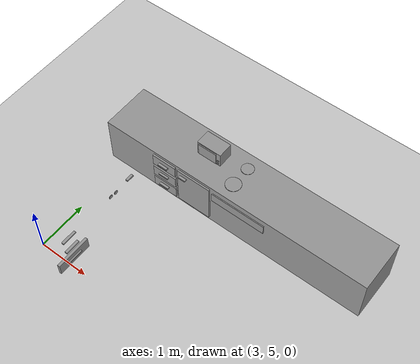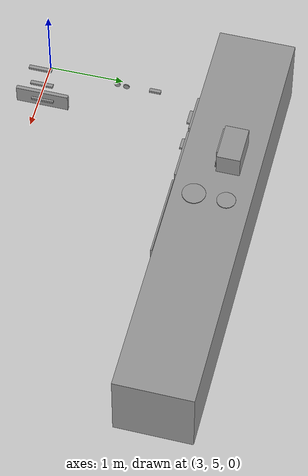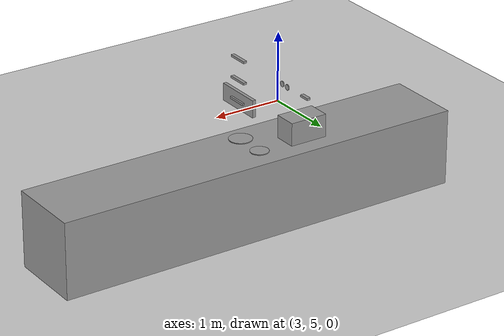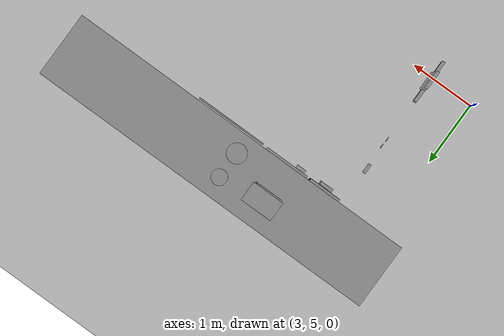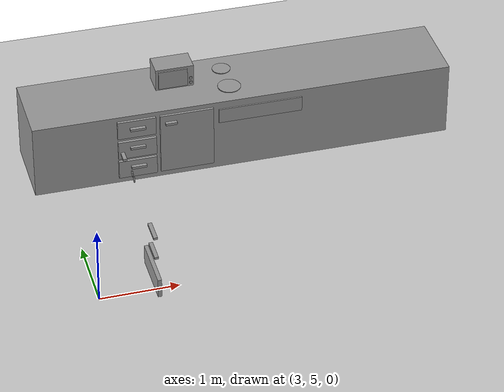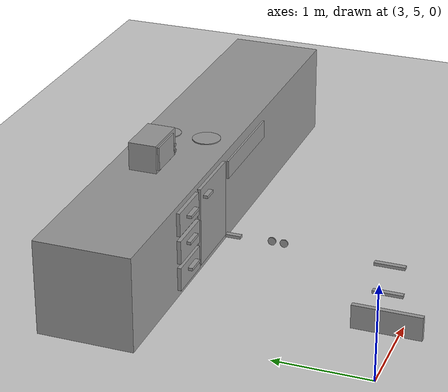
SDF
<sdf version="1.6">
 <world name="default">
  <model name="ground_plane">
   <static>1</static>
   <link name="link">
    <collision name="collision">
     <geometry><plane><normal>0 0 1</normal><size>100 100</size></plane></geometry>
     <surface>
      <contact><collide_bitmask>65535</collide_bitmask></contact>
      <friction><ode><mu>100</mu><mu2>50</mu2></ode></friction>
     </surface>
    </collision>
    <visual name="visual">
     <cast_shadows>0</cast_shadows>
     <geometry><plane><normal>0 0 1</normal><size>100 100</size></plane></geometry>
     <material>
      <script><uri>file://media/materials/scripts/gazebo.material</uri><name>Gazebo/Grey</name></script>
     </material>
    </visual>
   </link>
  </model>
  <model name="my_kitchen">
   <link name="link">
    <inertial>
     <mass>1</mass>
     <inertia>
      <ixx>0.166667</ixx>
      <ixy>0</ixy>
      <ixz>0</ixz>
      <iyy>0.166667</iyy>
      <iyz>0</iyz>
      <izz>0.166667</izz>
     </inertia>
    </inertial>
    <pose>1.23923 -0.000128 0 0 -0 0</pose>
    <visual name="visual">
     <geometry><box><size>5.5 1 1</size></box></geometry>
     <material>
      <script><name>Gazebo/Grey</name><uri>file://media/materials/scripts/gazebo.material</uri></script>
      <shader type="pixel"><normal_map>__default__</normal_map></shader>
      <ambient>0.8 0.8 0.8 1</ambient>
      <diffuse>0.65 0.65 0.65 1</diffuse>
      <specular>0.01 0.01 0.01 1</specular>
      <emissive>0 0 0 1</emissive>
     </material>
     <pose>0 0 0.5 0 -0 0</pose>
    </visual>
    <collision name="collision">
     <pose>0 0 0.5 0 -0 0</pose>
     <geometry><box><size>5.5 1 1</size></box></geometry>
     <surface>
      <friction>
       <ode><mu>1</mu><mu2>1</mu2><fdir1>0 0 0</fdir1><slip1>0</slip1><slip2>0</slip2></ode>
       <torsional>
        <coefficient>1</coefficient>
        <patch_radius>0</patch_radius>
        <surface_radius>0</surface_radius>
        <use_patch_radius>1</use_patch_radius>
        <ode><slip>0</slip></ode>
       </torsional>
      </friction>
      <bounce><restitution_coefficient>0</restitution_coefficient><threshold>1e+06</threshold></bounce>
      <contact>
       <collide_without_contact>0</collide_without_contact>
       <collide_without_contact_bitmask>1</collide_without_contact_bitmask>
       <collide_bitmask>1</collide_bitmask>
       <ode>
        <soft_cfm>0</soft_cfm>
        <soft_erp>0.2</soft_erp>
        <kp>1e+13</kp>
        <kd>1</kd>
        <max_vel>0.01</max_vel>
        <min_depth>0</min_depth>
       </ode>
       <bullet>
        <split_impulse>1</split_impulse>
        <split_impulse_penetration_threshold>-0.01</split_impulse_penetration_threshold>
        <soft_cfm>0</soft_cfm>
        <soft_erp>0.2</soft_erp>
        <kp>1e+13</kp>
        <kd>1</kd>
       </bullet>
      </contact>
     </surface>
    </collision>
   </link>
   <link name="link_0">
    <inertial>
     <mass>1</mass>
     <inertia><ixx>0.145833</ixx><ixy>0</ixy><ixz>0</ixz><iyy>0.145833</iyy><iyz>0</iyz><izz>0.125</izz></inertia>
    </inertial>
    <pose>-0.465747 -1.6095 0.842537 0 -0 0</pose>
    <visual name="visual">
     <pose>0 0 0 0 1.5707 0</pose>
     <geometry><cylinder><radius>0.04</radius><length>0.01</length></cylinder></geometry>
     <material>
      <lighting>1</lighting>
      <script><uri>file://media/materials/scripts/gazebo.material</uri><name>Gazebo/Grey</name></script>
      <shader type="pixel"><normal_map>__default__</normal_map></shader>
      <ambient>0.9 0.9 0.9 1</ambient>
      <diffuse>0.9 0.9 0.9 1</diffuse>
      <specular>0.01 0.01 0.01 1</specular>
      <emissive>0 0 0 1</emissive>
     </material>
    </visual>
    <collision name="collision">
     <pose>0 0 0 0 1.5707 0</pose>
     <geometry><cylinder><radius>0.04</radius><length>0.01</length></cylinder></geometry>
     <surface>
      <friction>
       <ode><mu>1</mu><mu2>1</mu2><fdir1>0 0 0</fdir1><slip1>0</slip1><slip2>0</slip2></ode>
       <torsional>
        <coefficient>1</coefficient>
        <patch_radius>0</patch_radius>
        <surface_radius>0</surface_radius>
        <use_patch_radius>1</use_patch_radius>
        <ode><slip>0</slip></ode>
       </torsional>
      </friction>
      <bounce><restitution_coefficient>0</restitution_coefficient><threshold>1e+06</threshold></bounce>
      <contact>
       <collide_without_contact>0</collide_without_contact>
       <collide_without_contact_bitmask>1</collide_without_contact_bitmask>
       <collide_bitmask>1</collide_bitmask>
       <ode>
        <soft_cfm>0</soft_cfm>
        <soft_erp>0.2</soft_erp>
        <kp>1e+13</kp>
        <kd>1</kd>
        <max_vel>0.01</max_vel>
        <min_depth>0</min_depth>
       </ode>
       <bullet>
        <split_impulse>1</split_impulse>
        <split_impulse_penetration_threshold>-0.01</split_impulse_penetration_threshold>
        <soft_cfm>0</soft_cfm>
        <soft_erp>0.2</soft_erp>
        <kp>1e+13</kp>
        <kd>1</kd>
       </bullet>
      </contact>
     </surface>
    </collision>
   </link>
   <link name="link_0_0">
    <inertial>
     <mass>1</mass>
     <inertia><ixx>0.145833</ixx><ixy>0</ixy><ixz>0</ixz><iyy>0.145833</iyy><iyz>0</iyz><izz>0.125</izz></inertia>
    </inertial>
    <pose>1.11587 -0.213264 1.02593 0 -0 0</pose>
    <gravity>0</gravity>
    <visual name="visual">
     <geometry><cylinder><radius>0.15</radius><length>0.01</length></cylinder></geometry>
     <material>
      <lighting>1</lighting>
      <script><uri>file://media/materials/scripts/gazebo.material</uri><name>Gazebo/Grey</name></script>
      <shader type="pixel"><normal_map>__default__</normal_map></shader>
      <ambient>0.3 0.3 0.3 1</ambient>
      <diffuse>0.3 0.3 0.3 1</diffuse>
      <specular>0.01 0.01 0.01 1</specular>
      <emissive>0 0 0 1</emissive>
     </material>
    </visual>
    <collision name="collision">
     <geometry><cylinder><radius>0.15</radius><length>0.01</length></cylinder></geometry>
     <surface>
      <friction>
       <ode><mu>1</mu><mu2>1</mu2><fdir1>0 0 0</fdir1><slip1>0</slip1><slip2>0</slip2></ode>
       <torsional>
        <coefficient>1</coefficient>
        <patch_radius>0</patch_radius>
        <surface_radius>0</surface_radius>
        <use_patch_radius>1</use_patch_radius>
        <ode><slip>0</slip></ode>
       </torsional>
      </friction>
      <bounce><restitution_coefficient>0</restitution_coefficient><threshold>1e+06</threshold></bounce>
      <contact>
       <collide_without_contact>0</collide_without_contact>
       <collide_without_contact_bitmask>1</collide_without_contact_bitmask>
       <collide_bitmask>1</collide_bitmask>
       <ode>
        <soft_cfm>0</soft_cfm>
        <soft_erp>0.2</soft_erp>
        <kp>1e+13</kp>
        <kd>1</kd>
        <max_vel>0.01</max_vel>
        <min_depth>0</min_depth>
       </ode>
       <bullet>
        <split_impulse>1</split_impulse>
        <split_impulse_penetration_threshold>-0.01</split_impulse_penetration_threshold>
        <soft_cfm>0</soft_cfm>
        <soft_erp>0.2</soft_erp>
        <kp>1e+13</kp>
        <kd>1</kd>
       </bullet>
      </contact>
     </surface>
    </collision>
   </link>
   <link name="link_0_0_clone">
    <inertial>
     <mass>1</mass>
     <inertia><ixx>0.145833</ixx><ixy>0</ixy><ixz>0</ixz><iyy>0.145833</iyy><iyz>0</iyz><izz>0.125</izz></inertia>
    </inertial>
    <pose>1.11788 0.197131 1.02593 0 -0 0</pose>
    <gravity>0</gravity>
    <visual name="visual">
     <geometry><cylinder><radius>0.12</radius><length>0.01</length></cylinder></geometry>
     <material>
      <lighting>1</lighting>
      <script><uri>file://media/materials/scripts/gazebo.material</uri><name>Gazebo/Grey</name></script>
      <shader type="pixel"><normal_map>__default__</normal_map></shader>
      <ambient>0.3 0.3 0.3 1</ambient>
      <diffuse>0.3 0.3 0.3 1</diffuse>
      <specular>0.01 0.01 0.01 1</specular>
      <emissive>0 0 0 1</emissive>
     </material>
    </visual>
    <collision name="collision">
     <geometry><cylinder><radius>0.12</radius><length>0.01</length></cylinder></geometry>
     <surface>
      <friction>
       <ode><mu>1</mu><mu2>1</mu2><fdir1>0 0 0</fdir1><slip1>0</slip1><slip2>0</slip2></ode>
       <torsional>
        <coefficient>1</coefficient>
        <patch_radius>0</patch_radius>
        <surface_radius>0</surface_radius>
        <use_patch_radius>1</use_patch_radius>
        <ode><slip>0</slip></ode>
       </torsional>
      </friction>
      <bounce><restitution_coefficient>0</restitution_coefficient><threshold>1e+06</threshold></bounce>
      <contact>
       <collide_without_contact>0</collide_without_contact>
       <collide_without_contact_bitmask>1</collide_without_contact_bitmask>
       <collide_bitmask>1</collide_bitmask>
       <ode>
        <soft_cfm>0</soft_cfm>
        <soft_erp>0.2</soft_erp>
        <kp>1e+13</kp>
        <kd>1</kd>
        <max_vel>0.01</max_vel>
        <min_depth>0</min_depth>
       </ode>
       <bullet>
        <split_impulse>1</split_impulse>
        <split_impulse_penetration_threshold>-0.01</split_impulse_penetration_threshold>
        <soft_cfm>0</soft_cfm>
        <soft_erp>0.2</soft_erp>
        <kp>1e+13</kp>
        <kd>1</kd>
       </bullet>
      </contact>
     </surface>
    </collision>
   </link>
   <link name="link_0_clone_0">
    <inertial>
     <mass>1</mass>
     <inertia><ixx>0.145833</ixx><ixy>0</ixy><ixz>0</ixz><iyy>0.145833</iyy><iyz>0</iyz><izz>0.125</izz></inertia>
    </inertial>
    <pose>-0.459347 -1.48795 0.840731 0 -0 0</pose>
    <visual name="visual">
     <pose>0 0 0 0 1.5707 0</pose>
     <geometry><cylinder><radius>0.04</radius><length>0.01</length></cylinder></geometry>
     <material>
      <lighting>1</lighting>
      <script><uri>file://media/materials/scripts/gazebo.material</uri><name>Gazebo/Grey</name></script>
      <shader type="pixel"><normal_map>__default__</normal_map></shader>
      <ambient>0.9 0.9 0.9 1</ambient>
      <diffuse>0.9 0.9 0.9 1</diffuse>
      <specular>0.01 0.01 0.01 1</specular>
      <emissive>0 0 0 1</emissive>
     </material>
    </visual>
    <collision name="collision">
     <pose>0 0 0 0 1.5707 0</pose>
     <geometry><cylinder><radius>0.04</radius><length>0.01</length></cylinder></geometry>
     <surface>
      <friction>
       <ode><mu>1</mu><mu2>1</mu2><fdir1>0 0 0</fdir1><slip1>0</slip1><slip2>0</slip2></ode>
       <torsional>
        <coefficient>1</coefficient>
        <patch_radius>0</patch_radius>
        <surface_radius>0</surface_radius>
        <use_patch_radius>1</use_patch_radius>
        <ode><slip>0</slip></ode>
       </torsional>
      </friction>
      <bounce><restitution_coefficient>0</restitution_coefficient><threshold>1e+06</threshold></bounce>
      <contact>
       <collide_without_contact>0</collide_without_contact>
       <collide_without_contact_bitmask>1</collide_without_contact_bitmask>
       <collide_bitmask>1</collide_bitmask>
       <ode>
        <soft_cfm>0</soft_cfm>
        <soft_erp>0.2</soft_erp>
        <kp>1e+13</kp>
        <kd>1</kd>
        <max_vel>0.01</max_vel>
        <min_depth>0</min_depth>
       </ode>
       <bullet>
        <split_impulse>1</split_impulse>
        <split_impulse_penetration_threshold>-0.01</split_impulse_penetration_threshold>
        <soft_cfm>0</soft_cfm>
        <soft_erp>0.2</soft_erp>
        <kp>1e+13</kp>
        <kd>1</kd>
       </bullet>
      </contact>
     </surface>
    </collision>
   </link>
   <link name="link_clone_0_clone_0_clone">
    <inertial>
     <mass>1</mass>
     <inertia>
      <ixx>0.166667</ixx>
      <ixy>0</ixy>
      <ixz>0</ixz>
      <iyy>0.166667</iyy>
      <iyz>0</iyz>
      <izz>0.166667</izz>
     </inertia>
    </inertial>
    <pose>1.44317 -0.53222 0.313912 0 -0 0</pose>
    <visual name="visual">
     <geometry><box><size>1.1 0.2 0.02</size></box></geometry>
     <material>
      <script><name>Gazebo/Grey</name><uri>file://media/materials/scripts/gazebo.material</uri></script>
      <shader type="pixel"><normal_map>__default__</normal_map></shader>
      <ambient>0.4 0.4 0.4 1</ambient>
      <diffuse>0.4 0.4 0.4 1</diffuse>
      <specular>0.01 0.01 0.01 1</specular>
      <emissive>0 0 0 1</emissive>
     </material>
     <pose>0 0 0.5 1.5707 -0 0</pose>
    </visual>
    <collision name="collision">
     <pose>0 0 0.5 1.5707 -0 0</pose>
     <geometry><box><size>1.1 0.2 0.02</size></box></geometry>
     <surface>
      <friction>
       <ode><mu>1</mu><mu2>1</mu2><fdir1>0 0 0</fdir1><slip1>0</slip1><slip2>0</slip2></ode>
       <torsional>
        <coefficient>1</coefficient>
        <patch_radius>0</patch_radius>
        <surface_radius>0</surface_radius>
        <use_patch_radius>1</use_patch_radius>
        <ode><slip>0</slip></ode>
       </torsional>
      </friction>
      <bounce><restitution_coefficient>0</restitution_coefficient><threshold>1e+06</threshold></bounce>
      <contact>
       <collide_without_contact>0</collide_without_contact>
       <collide_without_contact_bitmask>1</collide_without_contact_bitmask>
       <collide_bitmask>1</collide_bitmask>
       <ode>
        <soft_cfm>0</soft_cfm>
        <soft_erp>0.2</soft_erp>
        <kp>1e+13</kp>
        <kd>1</kd>
        <max_vel>0.01</max_vel>
        <min_depth>0</min_depth>
       </ode>
       <bullet>
        <split_impulse>1</split_impulse>
        <split_impulse_penetration_threshold>-0.01</split_impulse_penetration_threshold>
        <soft_cfm>0</soft_cfm>
        <soft_erp>0.2</soft_erp>
        <kp>1e+13</kp>
        <kd>1</kd>
       </bullet>
      </contact>
     </surface>
    </collision>
   </link>
   <link name="link_clone_clone_clone_0_clone_clone_0">
    <inertial>
     <mass>1</mass>
     <inertia>
      <ixx>0.166667</ixx>
      <ixy>0</ixy>
      <ixz>0</ixz>
      <iyy>0.166667</iyy>
      <iyz>0</iyz>
      <izz>0.166667</izz>
     </inertia>
    </inertial>
    <pose>-0.49222 -2.64791 -0.281579 0 -0 0</pose>
    <visual name="visual">
     <geometry><box><size>0.05 0.7 0.25</size></box></geometry>
     <material>
      <script><name>Gazebo/Grey</name><uri>file://media/materials/scripts/gazebo.material</uri></script>
      <shader type="pixel"><normal_map>__default__</normal_map></shader>
      <ambient>0.4 0.4 0.4 1</ambient>
      <diffuse>0.4 0.4 0.4 1</diffuse>
      <specular>0.01 0.01 0.01 1</specular>
      <emissive>0 0 0 1</emissive>
     </material>
     <pose>0 0 0.5 0 -0 0</pose>
    </visual>
    <collision name="collision">
     <pose>0 0 0.5 0 -0 0</pose>
     <geometry><box><size>0.05 0.7 0.25</size></box></geometry>
     <surface>
      <friction>
       <ode><mu>1</mu><mu2>1</mu2><fdir1>0 0 0</fdir1><slip1>0</slip1><slip2>0</slip2></ode>
       <torsional>
        <coefficient>1</coefficient>
        <patch_radius>0</patch_radius>
        <surface_radius>0</surface_radius>
        <use_patch_radius>1</use_patch_radius>
        <ode><slip>0</slip></ode>
       </torsional>
      </friction>
      <bounce><restitution_coefficient>0</restitution_coefficient><threshold>1e+06</threshold></bounce>
      <contact>
       <collide_without_contact>0</collide_without_contact>
       <collide_without_contact_bitmask>1</collide_without_contact_bitmask>
       <collide_bitmask>1</collide_bitmask>
       <ode>
        <soft_cfm>0</soft_cfm>
        <soft_erp>0.2</soft_erp>
        <kp>1e+13</kp>
        <kd>1</kd>
        <max_vel>0.01</max_vel>
        <min_depth>0</min_depth>
       </ode>
       <bullet>
        <split_impulse>1</split_impulse>
        <split_impulse_penetration_threshold>-0.01</split_impulse_penetration_threshold>
        <soft_cfm>0</soft_cfm>
        <soft_erp>0.2</soft_erp>
        <kp>1e+13</kp>
        <kd>1</kd>
       </bullet>
      </contact>
     </surface>
    </collision>
   </link>
   <link name="link_clone_clone_clone_0_clone_clone_clone">
    <inertial>
     <mass>1</mass>
     <inertia>
      <ixx>0.166667</ixx>
      <ixy>0</ixy>
      <ixz>0</ixz>
      <iyy>0.166667</iyy>
      <iyz>0</iyz>
      <izz>0.166667</izz>
     </inertia>
    </inertial>
    <pose>-0.4781 -1.10993 0.338029 0 -0 0</pose>
    <gravity>0</gravity>
    <visual name="visual">
     <geometry><box><size>0.05 0.15 0.03</size></box></geometry>
     <material>
      <script><name>Gazebo/Grey</name><uri>file://media/materials/scripts/gazebo.material</uri></script>
      <shader type="pixel"><normal_map>__default__</normal_map></shader>
      <ambient>0.9 0.9 0.9 1</ambient>
      <diffuse>0.8 0.8 0.8 1</diffuse>
      <specular>0.01 0.01 0.01 1</specular>
      <emissive>0 0 0 1</emissive>
     </material>
     <pose>0 0 0.5 0 -0 0</pose>
    </visual>
    <collision name="collision">
     <pose>0 0 0.5 0 -0 0</pose>
     <geometry><box><size>0.05 0.15 0.03</size></box></geometry>
     <surface>
      <friction>
       <ode><mu>1</mu><mu2>1</mu2><fdir1>0 0 0</fdir1><slip1>0</slip1><slip2>0</slip2></ode>
       <torsional>
        <coefficient>1</coefficient>
        <patch_radius>0</patch_radius>
        <surface_radius>0</surface_radius>
        <use_patch_radius>1</use_patch_radius>
        <ode><slip>0</slip></ode>
       </torsional>
      </friction>
      <bounce><restitution_coefficient>0</restitution_coefficient><threshold>1e+06</threshold></bounce>
      <contact>
       <collide_without_contact>0</collide_without_contact>
       <collide_without_contact_bitmask>1</collide_without_contact_bitmask>
       <collide_bitmask>1</collide_bitmask>
       <ode>
        <soft_cfm>0</soft_cfm>
        <soft_erp>0.2</soft_erp>
        <kp>1e+13</kp>
        <kd>1</kd>
        <max_vel>0.01</max_vel>
        <min_depth>0</min_depth>
       </ode>
       <bullet>
        <split_impulse>1</split_impulse>
        <split_impulse_penetration_threshold>-0.01</split_impulse_penetration_threshold>
        <soft_cfm>0</soft_cfm>
        <soft_erp>0.2</soft_erp>
        <kp>1e+13</kp>
        <kd>1</kd>
       </bullet>
      </contact>
     </surface>
    </collision>
   </link>
   <link name="link_clone_clone_clone_0_clone_clone_clone_0_clone_clone_clone_0_clone_0">
    <inertial>
     <mass>1</mass>
     <inertia>
      <ixx>0.166667</ixx>
      <ixy>0</ixy>
      <ixz>0</ixz>
      <iyy>0.166667</iyy>
      <iyz>0</iyz>
      <izz>0.166667</izz>
     </inertia>
    </inertial>
    <pose>-0.174147 -0.517268 0.010923 0 -0 0</pose>
    <gravity>0</gravity>
    <visual name="visual">
     <geometry><box><size>0.05 0.5 0.25</size></box></geometry>
     <material>
      <script><name>Gazebo/Grey</name><uri>file://media/materials/scripts/gazebo.material</uri></script>
      <shader type="pixel"><normal_map>__default__</normal_map></shader>
      <ambient>0.4 0.4 0.4 1</ambient>
      <diffuse>0.4 0.4 0.4 1</diffuse>
      <specular>0.01 0.01 0.01 1</specular>
      <emissive>0 0 0 1</emissive>
     </material>
     <pose>0 0 0.5 0 -0 1.5707</pose>
    </visual>
    <collision name="collision">
     <pose>0 0 0.5 0 -0 1.5707</pose>
     <geometry><box><size>0.05 0.5 0.25</size></box></geometry>
     <surface>
      <friction>
       <ode><mu>1</mu><mu2>1</mu2><fdir1>0 0 0</fdir1><slip1>0</slip1><slip2>0</slip2></ode>
       <torsional>
        <coefficient>1</coefficient>
        <patch_radius>0</patch_radius>
        <surface_radius>0</surface_radius>
        <use_patch_radius>1</use_patch_radius>
        <ode><slip>0</slip></ode>
       </torsional>
      </friction>
      <bounce><restitution_coefficient>0</restitution_coefficient><threshold>1e+06</threshold></bounce>
      <contact>
       <collide_without_contact>0</collide_without_contact>
       <collide_without_contact_bitmask>1</collide_without_contact_bitmask>
       <collide_bitmask>1</collide_bitmask>
       <ode>
        <soft_cfm>0</soft_cfm>
        <soft_erp>0.2</soft_erp>
        <kp>1e+13</kp>
        <kd>1</kd>
        <max_vel>0.01</max_vel>
        <min_depth>0</min_depth>
       </ode>
       <bullet>
        <split_impulse>1</split_impulse>
        <split_impulse_penetration_threshold>-0.01</split_impulse_penetration_threshold>
        <soft_cfm>0</soft_cfm>
        <soft_erp>0.2</soft_erp>
        <kp>1e+13</kp>
        <kd>1</kd>
       </bullet>
      </contact>
     </surface>
    </collision>
   </link>
   <link name="link_clone_clone_clone_0_clone_clone_clone_0_clone_clone_clone_0_clone_0_clone">
    <inertial>
     <mass>1</mass>
     <inertia>
      <ixx>0.166667</ixx>
      <ixy>0</ixy>
      <ixz>0</ixz>
      <iyy>0.166667</iyy>
      <iyz>0</iyz>
      <izz>0.166667</izz>
     </inertia>
    </inertial>
    <pose>-0.172613 -0.514864 -0.287733 0 -0 0</pose>
    <visual name="visual">
     <geometry><box><size>0.05 0.5 0.25</size></box></geometry>
     <material>
      <script><name>Gazebo/Grey</name><uri>file://media/materials/scripts/gazebo.material</uri></script>
      <shader type="pixel"><normal_map>__default__</normal_map></shader>
      <ambient>0.4 0.4 0.4 1</ambient>
      <diffuse>0.4 0.4 0.4 1</diffuse>
      <specular>0.01 0.01 0.01 1</specular>
      <emissive>0 0 0 1</emissive>
     </material>
     <pose>0 0 0.5 0 -0 1.5707</pose>
    </visual>
    <collision name="collision">
     <pose>0 0 0.5 0 -0 1.5707</pose>
     <geometry><box><size>0.05 0.5 0.25</size></box></geometry>
     <surface>
      <friction>
       <ode><mu>1</mu><mu2>1</mu2><fdir1>0 0 0</fdir1><slip1>0</slip1><slip2>0</slip2></ode>
       <torsional>
        <coefficient>1</coefficient>
        <patch_radius>0</patch_radius>
        <surface_radius>0</surface_radius>
        <use_patch_radius>1</use_patch_radius>
        <ode><slip>0</slip></ode>
       </torsional>
      </friction>
      <bounce><restitution_coefficient>0</restitution_coefficient><threshold>1e+06</threshold></bounce>
      <contact>
       <collide_without_contact>0</collide_without_contact>
       <collide_without_contact_bitmask>1</collide_without_contact_bitmask>
       <collide_bitmask>1</collide_bitmask>
       <ode>
        <soft_cfm>0</soft_cfm>
        <soft_erp>0.2</soft_erp>
        <kp>1e+13</kp>
        <kd>1</kd>
        <max_vel>0.01</max_vel>
        <min_depth>0</min_depth>
       </ode>
       <bullet>
        <split_impulse>1</split_impulse>
        <split_impulse_penetration_threshold>-0.01</split_impulse_penetration_threshold>
        <soft_cfm>0</soft_cfm>
        <soft_erp>0.2</soft_erp>
        <kp>1e+13</kp>
        <kd>1</kd>
       </bullet>
      </contact>
     </surface>
    </collision>
   </link>
   <link name="link_clone_clone_clone_0_clone_clone_clone_0_clone_clone_clone_0_clone_0_clone_0">
    <inertial>
     <mass>1</mass>
     <inertia>
      <ixx>0.166667</ixx>
      <ixy>0</ixy>
      <ixz>0</ixz>
      <iyy>0.166667</iyy>
      <iyz>0</iyz>
      <izz>0.166667</izz>
     </inertia>
    </inertial>
    <pose>-0.177001 -0.511923 0.314755 0 -0 0</pose>
    <visual name="visual">
     <geometry><box><size>0.05 0.5 0.25</size></box></geometry>
     <material>
      <script><name>Gazebo/Grey</name><uri>file://media/materials/scripts/gazebo.material</uri></script>
      <shader type="pixel"><normal_map>__default__</normal_map></shader>
      <ambient>0.4 0.4 0.4 1</ambient>
      <diffuse>0.4 0.4 0.4 1</diffuse>
      <specular>0.01 0.01 0.01 1</specular>
      <emissive>0 0 0 1</emissive>
     </material>
     <pose>0 0 0.5 0 -0 1.5707</pose>
    </visual>
    <collision name="collision">
     <pose>0 0 0.5 0 -0 1.5707</pose>
     <geometry><box><size>0.05 0.5 0.25</size></box></geometry>
     <surface>
      <friction>
       <ode><mu>1</mu><mu2>1</mu2><fdir1>0 0 0</fdir1><slip1>0</slip1><slip2>0</slip2></ode>
       <torsional>
        <coefficient>1</coefficient>
        <patch_radius>0</patch_radius>
        <surface_radius>0</surface_radius>
        <use_patch_radius>1</use_patch_radius>
        <ode><slip>0</slip></ode>
       </torsional>
      </friction>
      <bounce><restitution_coefficient>0</restitution_coefficient><threshold>1e+06</threshold></bounce>
      <contact>
       <collide_without_contact>0</collide_without_contact>
       <collide_without_contact_bitmask>1</collide_without_contact_bitmask>
       <collide_bitmask>1</collide_bitmask>
       <ode>
        <soft_cfm>0</soft_cfm>
        <soft_erp>0.2</soft_erp>
        <kp>1e+13</kp>
        <kd>1</kd>
        <max_vel>0.01</max_vel>
        <min_depth>0</min_depth>
       </ode>
       <bullet>
        <split_impulse>1</split_impulse>
        <split_impulse_penetration_threshold>-0.01</split_impulse_penetration_threshold>
        <soft_cfm>0</soft_cfm>
        <soft_erp>0.2</soft_erp>
        <kp>1e+13</kp>
        <kd>1</kd>
       </bullet>
      </contact>
     </surface>
    </collision>
   </link>
   <link name="link_clone_clone_clone_0_clone_clone_clone_0_clone_clone_clone_clone">
    <inertial>
     <mass>1</mass>
     <inertia>
      <ixx>0.166667</ixx>
      <ixy>0</ixy>
      <ixz>0</ixz>
      <iyy>0.166667</iyy>
      <iyz>0</iyz>
      <izz>0.166667</izz>
     </inertia>
    </inertial>
    <pose>0.477669 -0.509689 0.016041 0 -0 0</pose>
    <gravity>0</gravity>
    <visual name="visual">
     <geometry><box><size>0.05 0.7 0.85</size></box></geometry>
     <material>
      <script><name>Gazebo/Grey</name><uri>file://media/materials/scripts/gazebo.material</uri></script>
      <shader type="pixel"><normal_map>__default__</normal_map></shader>
      <ambient>0.4 0.4 0.4 1</ambient>
      <diffuse>0.4 0.4 0.4 1</diffuse>
      <specular>0.01 0.01 0.01 1</specular>
      <emissive>0 0 0 1</emissive>
     </material>
     <pose>0 0 0.5 0 -0 1.5707</pose>
    </visual>
    <collision name="collision">
     <pose>0 0 0.5 0 -0 1.5707</pose>
     <geometry><box><size>0.05 0.7 0.85</size></box></geometry>
     <surface>
      <friction>
       <ode><mu>1</mu><mu2>1</mu2><fdir1>0 0 0</fdir1><slip1>0</slip1><slip2>0</slip2></ode>
       <torsional>
        <coefficient>1</coefficient>
        <patch_radius>0</patch_radius>
        <surface_radius>0</surface_radius>
        <use_patch_radius>1</use_patch_radius>
        <ode><slip>0</slip></ode>
       </torsional>
      </friction>
      <bounce><restitution_coefficient>0</restitution_coefficient><threshold>1e+06</threshold></bounce>
      <contact>
       <collide_without_contact>0</collide_without_contact>
       <collide_without_contact_bitmask>1</collide_without_contact_bitmask>
       <collide_bitmask>1</collide_bitmask>
       <ode>
        <soft_cfm>0</soft_cfm>
        <soft_erp>0.2</soft_erp>
        <kp>1e+13</kp>
        <kd>1</kd>
        <max_vel>0.01</max_vel>
        <min_depth>0</min_depth>
       </ode>
       <bullet>
        <split_impulse>1</split_impulse>
        <split_impulse_penetration_threshold>-0.01</split_impulse_penetration_threshold>
        <soft_cfm>0</soft_cfm>
        <soft_erp>0.2</soft_erp>
        <kp>1e+13</kp>
        <kd>1</kd>
       </bullet>
      </contact>
     </surface>
    </collision>
   </link>
   <link name="link_clone_clone_clone_0_clone_clone_clone_clone">
    <inertial>
     <mass>1</mass>
     <inertia>
      <ixx>0.166667</ixx>
      <ixy>0</ixy>
      <ixz>0</ixz>
      <iyy>0.166667</iyy>
      <iyz>0</iyz>
      <izz>0.166667</izz>
     </inertia>
    </inertial>
    <pose>-0.477732 -2.6395 0.015278 0 -0 0</pose>
    <visual name="visual">
     <geometry><box><size>0.05 0.3 0.03</size></box></geometry>
     <material>
      <script><name>Gazebo/Grey</name><uri>file://media/materials/scripts/gazebo.material</uri></script>
      <shader type="pixel"><normal_map>__default__</normal_map></shader>
      <ambient>0.9 0.9 0.9 1</ambient>
      <diffuse>0.8 0.8 0.8 1</diffuse>
      <specular>0.01 0.01 0.01 1</specular>
      <emissive>0 0 0 1</emissive>
     </material>
     <pose>0 0 0.5 0 -0 0</pose>
    </visual>
    <collision name="collision">
     <pose>0 0 0.5 0 -0 0</pose>
     <geometry><box><size>0.05 0.3 0.03</size></box></geometry>
     <surface>
      <friction>
       <ode><mu>1</mu><mu2>1</mu2><fdir1>0 0 0</fdir1><slip1>0</slip1><slip2>0</slip2></ode>
       <torsional>
        <coefficient>1</coefficient>
        <patch_radius>0</patch_radius>
        <surface_radius>0</surface_radius>
        <use_patch_radius>1</use_patch_radius>
        <ode><slip>0</slip></ode>
       </torsional>
      </friction>
      <bounce><restitution_coefficient>0</restitution_coefficient><threshold>1e+06</threshold></bounce>
      <contact>
       <collide_without_contact>0</collide_without_contact>
       <collide_without_contact_bitmask>1</collide_without_contact_bitmask>
       <collide_bitmask>1</collide_bitmask>
       <ode>
        <soft_cfm>0</soft_cfm>
        <soft_erp>0.2</soft_erp>
        <kp>1e+13</kp>
        <kd>1</kd>
        <max_vel>0.01</max_vel>
        <min_depth>0</min_depth>
       </ode>
       <bullet>
        <split_impulse>1</split_impulse>
        <split_impulse_penetration_threshold>-0.01</split_impulse_penetration_threshold>
        <soft_cfm>0</soft_cfm>
        <soft_erp>0.2</soft_erp>
        <kp>1e+13</kp>
        <kd>1</kd>
       </bullet>
      </contact>
     </surface>
    </collision>
   </link>
   <link name="link_clone_clone_clone_0_clone_clone_clone_clone_0">
    <inertial>
     <mass>1</mass>
     <inertia>
      <ixx>0.166667</ixx>
      <ixy>0</ixy>
      <ixz>0</ixz>
      <iyy>0.166667</iyy>
      <iyz>0</iyz>
      <izz>0.166667</izz>
     </inertia>
    </inertial>
    <pose>-0.485904 -2.64716 0.318441 0 -0 0</pose>
    <visual name="visual">
     <geometry><box><size>0.05 0.3 0.03</size></box></geometry>
     <material>
      <script><name>Gazebo/Grey</name><uri>file://media/materials/scripts/gazebo.material</uri></script>
      <shader type="pixel"><normal_map>__default__</normal_map></shader>
      <ambient>0.9 0.9 0.9 1</ambient>
      <diffuse>0.8 0.8 0.8 1</diffuse>
      <specular>0.01 0.01 0.01 1</specular>
      <emissive>0 0 0 1</emissive>
     </material>
     <pose>0 0 0.5 0 -0 0</pose>
    </visual>
    <collision name="collision">
     <pose>0 0 0.5 0 -0 0</pose>
     <geometry><box><size>0.05 0.3 0.03</size></box></geometry>
     <surface>
      <friction>
       <ode><mu>1</mu><mu2>1</mu2><fdir1>0 0 0</fdir1><slip1>0</slip1><slip2>0</slip2></ode>
       <torsional>
        <coefficient>1</coefficient>
        <patch_radius>0</patch_radius>
        <surface_radius>0</surface_radius>
        <use_patch_radius>1</use_patch_radius>
        <ode><slip>0</slip></ode>
       </torsional>
      </friction>
      <bounce><restitution_coefficient>0</restitution_coefficient><threshold>1e+06</threshold></bounce>
      <contact>
       <collide_without_contact>0</collide_without_contact>
       <collide_without_contact_bitmask>1</collide_without_contact_bitmask>
       <collide_bitmask>1</collide_bitmask>
       <ode>
        <soft_cfm>0</soft_cfm>
        <soft_erp>0.2</soft_erp>
        <kp>1e+13</kp>
        <kd>1</kd>
        <max_vel>0.01</max_vel>
        <min_depth>0</min_depth>
       </ode>
       <bullet>
        <split_impulse>1</split_impulse>
        <split_impulse_penetration_threshold>-0.01</split_impulse_penetration_threshold>
        <soft_cfm>0</soft_cfm>
        <soft_erp>0.2</soft_erp>
        <kp>1e+13</kp>
        <kd>1</kd>
       </bullet>
      </contact>
     </surface>
    </collision>
   </link>
   <link name="link_clone_clone_clone_0_clone_clone_clone_clone_1_clone_0">
    <inertial>
     <mass>1</mass>
     <inertia>
      <ixx>0.166667</ixx>
      <ixy>0</ixy>
      <ixz>0</ixz>
      <iyy>0.166667</iyy>
      <iyz>0</iyz>
      <izz>0.166667</izz>
     </inertia>
    </inertial>
    <pose>0.264715 -0.561956 0.338029 0 -0 0</pose>
    <gravity>0</gravity>
    <visual name="visual">
     <geometry><box><size>0.05 0.15 0.03</size></box></geometry>
     <material>
      <script><name>Gazebo/Grey</name><uri>file://media/materials/scripts/gazebo.material</uri></script>
      <shader type="pixel"><normal_map>__default__</normal_map></shader>
      <ambient>0.9 0.9 0.9 1</ambient>
      <diffuse>0.8 0.8 0.8 1</diffuse>
      <specular>0.01 0.01 0.01 1</specular>
      <emissive>0 0 0 1</emissive>
     </material>
     <pose>0 0 0.5 0 -0 1.5707</pose>
    </visual>
    <collision name="collision">
     <pose>0 0 0.5 0 -0 1.5707</pose>
     <geometry><box><size>0.05 0.15 0.03</size></box></geometry>
     <surface>
      <friction>
       <ode><mu>1</mu><mu2>1</mu2><fdir1>0 0 0</fdir1><slip1>0</slip1><slip2>0</slip2></ode>
       <torsional>
        <coefficient>1</coefficient>
        <patch_radius>0</patch_radius>
        <surface_radius>0</surface_radius>
        <use_patch_radius>1</use_patch_radius>
        <ode><slip>0</slip></ode>
       </torsional>
      </friction>
      <bounce><restitution_coefficient>0</restitution_coefficient><threshold>1e+06</threshold></bounce>
      <contact>
       <collide_without_contact>0</collide_without_contact>
       <collide_without_contact_bitmask>1</collide_without_contact_bitmask>
       <collide_bitmask>1</collide_bitmask>
       <ode>
        <soft_cfm>0</soft_cfm>
        <soft_erp>0.2</soft_erp>
        <kp>1e+13</kp>
        <kd>1</kd>
        <max_vel>0.01</max_vel>
        <min_depth>0</min_depth>
       </ode>
       <bullet>
        <split_impulse>1</split_impulse>
        <split_impulse_penetration_threshold>-0.01</split_impulse_penetration_threshold>
        <soft_cfm>0</soft_cfm>
        <soft_erp>0.2</soft_erp>
        <kp>1e+13</kp>
        <kd>1</kd>
       </bullet>
      </contact>
     </surface>
    </collision>
   </link>
   <link name="link_clone_clone_clone_0_clone_clone_clone_clone_1_clone_0_clone">
    <inertial>
     <mass>1</mass>
     <inertia>
      <ixx>0.166667</ixx>
      <ixy>0</ixy>
      <ixz>0</ixz>
      <iyy>0.166667</iyy>
      <iyz>0</iyz>
      <izz>0.166667</izz>
     </inertia>
    </inertial>
    <pose>-0.172178 -0.559644 0.047956 0 -0 0</pose>
    <gravity>0</gravity>
    <visual name="visual">
     <geometry><box><size>0.05 0.2 0.03</size></box></geometry>
     <material>
      <script><name>Gazebo/Grey</name><uri>file://media/materials/scripts/gazebo.material</uri></script>
      <shader type="pixel"><normal_map>__default__</normal_map></shader>
      <ambient>0.9 0.9 0.9 1</ambient>
      <diffuse>0.8 0.8 0.8 1</diffuse>
      <specular>0.01 0.01 0.01 1</specular>
      <emissive>0 0 0 1</emissive>
     </material>
     <pose>0 0 0.5 0 -0 1.5707</pose>
    </visual>
    <collision name="collision">
     <pose>0 0 0.5 0 -0 1.5707</pose>
     <geometry><box><size>0.05 0.2 0.03</size></box></geometry>
     <surface>
      <friction>
       <ode><mu>1</mu><mu2>1</mu2><fdir1>0 0 0</fdir1><slip1>0</slip1><slip2>0</slip2></ode>
       <torsional>
        <coefficient>1</coefficient>
        <patch_radius>0</patch_radius>
        <surface_radius>0</surface_radius>
        <use_patch_radius>1</use_patch_radius>
        <ode><slip>0</slip></ode>
       </torsional>
      </friction>
      <bounce><restitution_coefficient>0</restitution_coefficient><threshold>1e+06</threshold></bounce>
      <contact>
       <collide_without_contact>0</collide_without_contact>
       <collide_without_contact_bitmask>1</collide_without_contact_bitmask>
       <collide_bitmask>1</collide_bitmask>
       <ode>
        <soft_cfm>0</soft_cfm>
        <soft_erp>0.2</soft_erp>
        <kp>1e+13</kp>
        <kd>1</kd>
        <max_vel>0.01</max_vel>
        <min_depth>0</min_depth>
       </ode>
       <bullet>
        <split_impulse>1</split_impulse>
        <split_impulse_penetration_threshold>-0.01</split_impulse_penetration_threshold>
        <soft_cfm>0</soft_cfm>
        <soft_erp>0.2</soft_erp>
        <kp>1e+13</kp>
        <kd>1</kd>
       </bullet>
      </contact>
     </surface>
    </collision>
   </link>
   <link name="link_clone_clone_clone_0_clone_clone_clone_clone_1_clone_0_clone_clone">
    <inertial>
     <mass>1</mass>
     <inertia>
      <ixx>0.166667</ixx>
      <ixy>0</ixy>
      <ixz>0</ixz>
      <iyy>0.166667</iyy>
      <iyz>0</iyz>
      <izz>0.166667</izz>
     </inertia>
    </inertial>
    <pose>-0.171122 -0.571169 0.338029 0 -0 0</pose>
    <gravity>0</gravity>
    <visual name="visual">
     <geometry><box><size>0.05 0.2 0.03</size></box></geometry>
     <material>
      <script><name>Gazebo/Grey</name><uri>file://media/materials/scripts/gazebo.material</uri></script>
      <shader type="pixel"><normal_map>__default__</normal_map></shader>
      <ambient>0.9 0.9 0.9 1</ambient>
      <diffuse>0.8 0.8 0.8 1</diffuse>
      <specular>0.01 0.01 0.01 1</specular>
      <emissive>0 0 0 1</emissive>
     </material>
     <pose>0 0 0.5 0 -0 1.5707</pose>
    </visual>
    <collision name="collision">
     <pose>0 0 0.5 0 -0 1.5707</pose>
     <geometry><box><size>0.05 0.2 0.03</size></box></geometry>
     <surface>
      <friction>
       <ode><mu>1</mu><mu2>1</mu2><fdir1>0 0 0</fdir1><slip1>0</slip1><slip2>0</slip2></ode>
       <torsional>
        <coefficient>1</coefficient>
        <patch_radius>0</patch_radius>
        <surface_radius>0</surface_radius>
        <use_patch_radius>1</use_patch_radius>
        <ode><slip>0</slip></ode>
       </torsional>
      </friction>
      <bounce><restitution_coefficient>0</restitution_coefficient><threshold>1e+06</threshold></bounce>
      <contact>
       <collide_without_contact>0</collide_without_contact>
       <collide_without_contact_bitmask>1</collide_without_contact_bitmask>
       <collide_bitmask>1</collide_bitmask>
       <ode>
        <soft_cfm>0</soft_cfm>
        <soft_erp>0.2</soft_erp>
        <kp>1e+13</kp>
        <kd>1</kd>
        <max_vel>0.01</max_vel>
        <min_depth>0</min_depth>
       </ode>
       <bullet>
        <split_impulse>1</split_impulse>
        <split_impulse_penetration_threshold>-0.01</split_impulse_penetration_threshold>
        <soft_cfm>0</soft_cfm>
        <soft_erp>0.2</soft_erp>
        <kp>1e+13</kp>
        <kd>1</kd>
       </bullet>
      </contact>
     </surface>
    </collision>
   </link>
   <link name="link_clone_clone_clone_0_clone_clone_clone_clone_1_clone_0_clone_clone_clone">
    <inertial>
     <mass>1</mass>
     <inertia>
      <ixx>0.166667</ixx>
      <ixy>0</ixy>
      <ixz>0</ixz>
      <iyy>0.166667</iyy>
      <iyz>0</iyz>
      <izz>0.166667</izz>
     </inertia>
    </inertial>
    <pose>-0.169187 -0.575049 -0.243065 0 -0 0</pose>
    <gravity>0</gravity>
    <visual name="visual">
     <geometry><box><size>0.05 0.2 0.03</size></box></geometry>
     <material>
      <script><name>Gazebo/Grey</name><uri>file://media/materials/scripts/gazebo.material</uri></script>
      <shader type="pixel"><normal_map>__default__</normal_map></shader>
      <ambient>0.9 0.9 0.9 1</ambient>
      <diffuse>0.8 0.8 0.8 1</diffuse>
      <specular>0.01 0.01 0.01 1</specular>
      <emissive>0 0 0 1</emissive>
     </material>
     <pose>0 0 0.5 0 -0 1.5707</pose>
    </visual>
    <collision name="collision">
     <pose>0 0 0.5 0 -0 1.5707</pose>
     <geometry><box><size>0.05 0.2 0.03</size></box></geometry>
     <surface>
      <friction>
       <ode><mu>1</mu><mu2>1</mu2><fdir1>0 0 0</fdir1><slip1>0</slip1><slip2>0</slip2></ode>
       <torsional>
        <coefficient>1</coefficient>
        <patch_radius>0</patch_radius>
        <surface_radius>0</surface_radius>
        <use_patch_radius>1</use_patch_radius>
        <ode><slip>0</slip></ode>
       </torsional>
      </friction>
      <bounce><restitution_coefficient>0</restitution_coefficient><threshold>1e+06</threshold></bounce>
      <contact>
       <collide_without_contact>0</collide_without_contact>
       <collide_without_contact_bitmask>1</collide_without_contact_bitmask>
       <collide_bitmask>1</collide_bitmask>
       <ode>
        <soft_cfm>0</soft_cfm>
        <soft_erp>0.2</soft_erp>
        <kp>1e+13</kp>
        <kd>1</kd>
        <max_vel>0.01</max_vel>
        <min_depth>0</min_depth>
       </ode>
       <bullet>
        <split_impulse>1</split_impulse>
        <split_impulse_penetration_threshold>-0.01</split_impulse_penetration_threshold>
        <soft_cfm>0</soft_cfm>
        <soft_erp>0.2</soft_erp>
        <kp>1e+13</kp>
        <kd>1</kd>
       </bullet>
      </contact>
     </surface>
    </collision>
   </link>
   <link name="link_clone_clone_clone_0_clone_clone_clone_clone_clone">
    <inertial>
     <mass>1</mass>
     <inertia>
      <ixx>0.166667</ixx>
      <ixy>0</ixy>
      <ixz>0</ixz>
      <iyy>0.166667</iyy>
      <iyz>0</iyz>
      <izz>0.166667</izz>
     </inertia>
    </inertial>
    <pose>-0.462675 -2.63964 -0.279787 0 -0 0</pose>
    <gravity>0</gravity>
    <visual name="visual">
     <geometry><box><size>0.05 0.3 0.03</size></box></geometry>
     <material>
      <script><name>Gazebo/Grey</name><uri>file://media/materials/scripts/gazebo.material</uri></script>
      <shader type="pixel"><normal_map>__default__</normal_map></shader>
      <ambient>0.9 0.9 0.9 1</ambient>
      <diffuse>0.8 0.8 0.8 1</diffuse>
      <specular>0.01 0.01 0.01 1</specular>
      <emissive>0 0 0 1</emissive>
     </material>
     <pose>0 0 0.5 0 -0 0</pose>
    </visual>
    <collision name="collision">
     <pose>0 0 0.5 0 -0 0</pose>
     <geometry><box><size>0.05 0.3 0.03</size></box></geometry>
     <surface>
      <friction>
       <ode><mu>1</mu><mu2>1</mu2><fdir1>0 0 0</fdir1><slip1>0</slip1><slip2>0</slip2></ode>
       <torsional>
        <coefficient>1</coefficient>
        <patch_radius>0</patch_radius>
        <surface_radius>0</surface_radius>
        <use_patch_radius>1</use_patch_radius>
        <ode><slip>0</slip></ode>
       </torsional>
      </friction>
      <bounce><restitution_coefficient>0</restitution_coefficient><threshold>1e+06</threshold></bounce>
      <contact>
       <collide_without_contact>0</collide_without_contact>
       <collide_without_contact_bitmask>1</collide_without_contact_bitmask>
       <collide_bitmask>1</collide_bitmask>
       <ode>
        <soft_cfm>0</soft_cfm>
        <soft_erp>0.2</soft_erp>
        <kp>1e+13</kp>
        <kd>1</kd>
        <max_vel>0.01</max_vel>
        <min_depth>0</min_depth>
       </ode>
       <bullet>
        <split_impulse>1</split_impulse>
        <split_impulse_penetration_threshold>-0.01</split_impulse_penetration_threshold>
        <soft_cfm>0</soft_cfm>
        <soft_erp>0.2</soft_erp>
        <kp>1e+13</kp>
        <kd>1</kd>
       </bullet>
      </contact>
     </surface>
    </collision>
   </link>
   <static>1</static>
   <pose>4.18115 7.73532 0 0 -0 0</pose>
  </model>
  <model name="my_microwave">
   <link name="link">
    <inertial>
     <mass>1</mass>
     <inertia>
      <ixx>0.166667</ixx>
      <ixy>0</ixy>
      <ixz>0</ixz>
      <iyy>0.166667</iyy>
      <iyz>0</iyz>
      <izz>0.166667</izz>
     </inertia>
    </inertial>
    <visual name="visual">
     <geometry><box><size>0.5 0.3 0.3</size></box></geometry>
     <material>
      <script><name>Gazebo/Grey</name><uri>file://media/materials/scripts/gazebo.material</uri></script>
      <shader type="pixel"><normal_map>__default__</normal_map></shader>
      <ambient>0.9 0.9 0.9 1</ambient>
      <diffuse>0.9 0.9 0.9 1</diffuse>
      <specular>0.01 0.01 0.01 1</specular>
      <emissive>0 0 0 1</emissive>
     </material>
     <pose>0 0 1.15 0 -0 0</pose>
    </visual>
    <collision name="collision">
     <pose>0 0 1.15 0 -0 0</pose>
     <geometry><box><size>0.5 0.3 0.3</size></box></geometry>
     <surface>
      <friction>
       <ode><mu>1</mu><mu2>1</mu2><fdir1>0 0 0</fdir1><slip1>0</slip1><slip2>0</slip2></ode>
       <torsional>
        <coefficient>1</coefficient>
        <patch_radius>0</patch_radius>
        <surface_radius>0</surface_radius>
        <use_patch_radius>1</use_patch_radius>
        <ode><slip>0</slip></ode>
       </torsional>
      </friction>
      <bounce><restitution_coefficient>0</restitution_coefficient><threshold>1e+06</threshold></bounce>
      <contact>
       <collide_without_contact>0</collide_without_contact>
       <collide_without_contact_bitmask>1</collide_without_contact_bitmask>
       <collide_bitmask>1</collide_bitmask>
       <ode>
        <soft_cfm>0</soft_cfm>
        <soft_erp>0.2</soft_erp>
        <kp>1e+13</kp>
        <kd>1</kd>
        <max_vel>0.01</max_vel>
        <min_depth>0</min_depth>
       </ode>
       <bullet>
        <split_impulse>1</split_impulse>
        <split_impulse_penetration_threshold>-0.01</split_impulse_penetration_threshold>
        <soft_cfm>0</soft_cfm>
        <soft_erp>0.2</soft_erp>
        <kp>1e+13</kp>
        <kd>1</kd>
       </bullet>
      </contact>
     </surface>
    </collision>
   </link>
   <link name="link_0">
    <inertial>
     <mass>1</mass>
     <inertia><ixx>0.145833</ixx><ixy>0</ixy><ixz>0</ixz><iyy>0.145833</iyy><iyz>0</iyz><izz>0.125</izz></inertia>
    </inertial>
    <pose>0.208916 -0.163165 -0.025713 0 -0 0</pose>
    <visual name="visual">
     <pose>0 0 1.15 1.5707 -0 0</pose>
     <geometry><cylinder><radius>0.02</radius><length>0.01</length></cylinder></geometry>
     <material>
      <lighting>1</lighting>
      <script><uri>file://media/materials/scripts/gazebo.material</uri><name>Gazebo/Grey</name></script>
      <shader type="pixel"><normal_map>__default__</normal_map></shader>
      <ambient>0.3 0.3 0.3 1</ambient>
      <diffuse>0.7 0.7 0.7 1</diffuse>
      <specular>0.01 0.01 0.01 1</specular>
      <emissive>0 0 0 1</emissive>
     </material>
    </visual>
    <collision name="collision">
     <pose>0 0 1.15 0 -0 0</pose>
     <geometry><cylinder><radius>0.02</radius><length>0.01</length></cylinder></geometry>
     <surface>
      <friction>
       <ode><mu>1</mu><mu2>1</mu2><fdir1>0 0 0</fdir1><slip1>0</slip1><slip2>0</slip2></ode>
       <torsional>
        <coefficient>1</coefficient>
        <patch_radius>0</patch_radius>
        <surface_radius>0</surface_radius>
        <use_patch_radius>1</use_patch_radius>
        <ode><slip>0</slip></ode>
       </torsional>
      </friction>
      <bounce><restitution_coefficient>0</restitution_coefficient><threshold>1e+06</threshold></bounce>
      <contact>
       <collide_without_contact>0</collide_without_contact>
       <collide_without_contact_bitmask>1</collide_without_contact_bitmask>
       <collide_bitmask>1</collide_bitmask>
       <ode>
        <soft_cfm>0</soft_cfm>
        <soft_erp>0.2</soft_erp>
        <kp>1e+13</kp>
        <kd>1</kd>
        <max_vel>0.01</max_vel>
        <min_depth>0</min_depth>
       </ode>
       <bullet>
        <split_impulse>1</split_impulse>
        <split_impulse_penetration_threshold>-0.01</split_impulse_penetration_threshold>
        <soft_cfm>0</soft_cfm>
        <soft_erp>0.2</soft_erp>
        <kp>1e+13</kp>
        <kd>1</kd>
       </bullet>
      </contact>
     </surface>
    </collision>
   </link>
   <link name="link_0_clone">
    <inertial>
     <mass>1</mass>
     <inertia><ixx>0.145833</ixx><ixy>0</ixy><ixz>0</ixz><iyy>0.145833</iyy><iyz>0</iyz><izz>0.125</izz></inertia>
    </inertial>
    <pose>0.209169 -0.165813 -0.087936 0 -0 0</pose>
    <visual name="visual">
     <pose>0 0 1.15 1.5707 -0 0</pose>
     <geometry><cylinder><radius>0.02</radius><length>0.01</length></cylinder></geometry>
     <material>
      <lighting>1</lighting>
      <script><uri>file://media/materials/scripts/gazebo.material</uri><name>Gazebo/Grey</name></script>
      <shader type="pixel"><normal_map>__default__</normal_map></shader>
      <ambient>0.3 0.3 0.3 1</ambient>
      <diffuse>0.7 0.7 0.7 1</diffuse>
      <specular>0.01 0.01 0.01 1</specular>
      <emissive>0 0 0 1</emissive>
     </material>
    </visual>
    <collision name="collision">
     <pose>0 0 1.15 0 -0 0</pose>
     <geometry><cylinder><radius>0.02</radius><length>0.01</length></cylinder></geometry>
     <surface>
      <friction>
       <ode><mu>1</mu><mu2>1</mu2><fdir1>0 0 0</fdir1><slip1>0</slip1><slip2>0</slip2></ode>
       <torsional>
        <coefficient>1</coefficient>
        <patch_radius>0</patch_radius>
        <surface_radius>0</surface_radius>
        <use_patch_radius>1</use_patch_radius>
        <ode><slip>0</slip></ode>
       </torsional>
      </friction>
      <bounce><restitution_coefficient>0</restitution_coefficient><threshold>1e+06</threshold></bounce>
      <contact>
       <collide_without_contact>0</collide_without_contact>
       <collide_without_contact_bitmask>1</collide_without_contact_bitmask>
       <collide_bitmask>1</collide_bitmask>
       <ode>
        <soft_cfm>0</soft_cfm>
        <soft_erp>0.2</soft_erp>
        <kp>1e+13</kp>
        <kd>1</kd>
        <max_vel>0.01</max_vel>
        <min_depth>0</min_depth>
       </ode>
       <bullet>
        <split_impulse>1</split_impulse>
        <split_impulse_penetration_threshold>-0.01</split_impulse_penetration_threshold>
        <soft_cfm>0</soft_cfm>
        <soft_erp>0.2</soft_erp>
        <kp>1e+13</kp>
        <kd>1</kd>
       </bullet>
      </contact>
     </surface>
    </collision>
   </link>
   <link name="link_clone">
    <inertial>
     <mass>1</mass>
     <inertia>
      <ixx>0.166667</ixx>
      <ixy>0</ixy>
      <ixz>0</ixz>
      <iyy>0.166667</iyy>
      <iyz>0</iyz>
      <izz>0.166667</izz>
     </inertia>
    </inertial>
    <pose>-0.026233 -0.15998 0 0 -0 0</pose>
    <visual name="visual">
     <geometry><box><size>0.38 0.02 0.25</size></box></geometry>
     <material>
      <script><name>Gazebo/Grey</name><uri>file://media/materials/scripts/gazebo.material</uri></script>
      <shader type="pixel"><normal_map>__default__</normal_map></shader>
      <ambient>0.2 0.2 0.2 1</ambient>
      <diffuse>0.2 0.2 0.2 1</diffuse>
      <specular>0.01 0.01 0.01 1</specular>
      <emissive>0 0 0 1</emissive>
     </material>
     <pose>0 0 1.15 0 -0 0</pose>
    </visual>
    <collision name="collision">
     <pose>0 0 1.15 0 -0 0</pose>
     <geometry><box><size>0.38 0.02 0.25</size></box></geometry>
     <surface>
      <friction>
       <ode><mu>1</mu><mu2>1</mu2><fdir1>0 0 0</fdir1><slip1>0</slip1><slip2>0</slip2></ode>
       <torsional>
        <coefficient>1</coefficient>
        <patch_radius>0</patch_radius>
        <surface_radius>0</surface_radius>
        <use_patch_radius>1</use_patch_radius>
        <ode><slip>0</slip></ode>
       </torsional>
      </friction>
      <bounce><restitution_coefficient>0</restitution_coefficient><threshold>1e+06</threshold></bounce>
      <contact>
       <collide_without_contact>0</collide_without_contact>
       <collide_without_contact_bitmask>1</collide_without_contact_bitmask>
       <collide_bitmask>1</collide_bitmask>
       <ode>
        <soft_cfm>0</soft_cfm>
        <soft_erp>0.2</soft_erp>
        <kp>1e+13</kp>
        <kd>1</kd>
        <max_vel>0.01</max_vel>
        <min_depth>0</min_depth>
       </ode>
       <bullet>
        <split_impulse>1</split_impulse>
        <split_impulse_penetration_threshold>-0.01</split_impulse_penetration_threshold>
        <soft_cfm>0</soft_cfm>
        <soft_erp>0.2</soft_erp>
        <kp>1e+13</kp>
        <kd>1</kd>
       </bullet>
      </contact>
     </surface>
    </collision>
   </link>
   <static>1</static>
   <pose>4.62559 7.8513 0 0 -0 0</pose>
  </model>
 </world>
</sdf>
